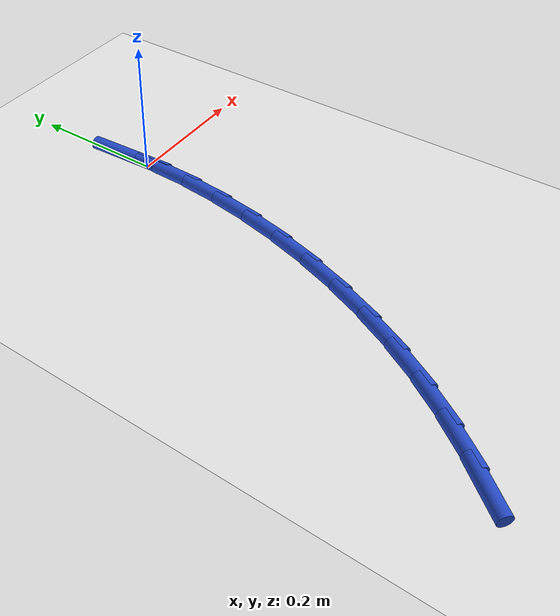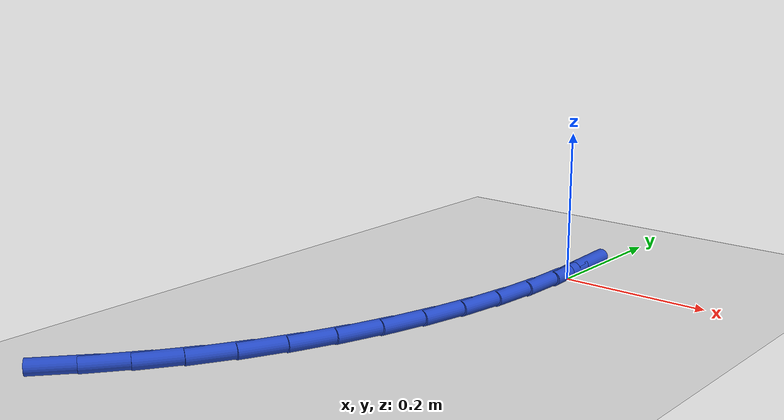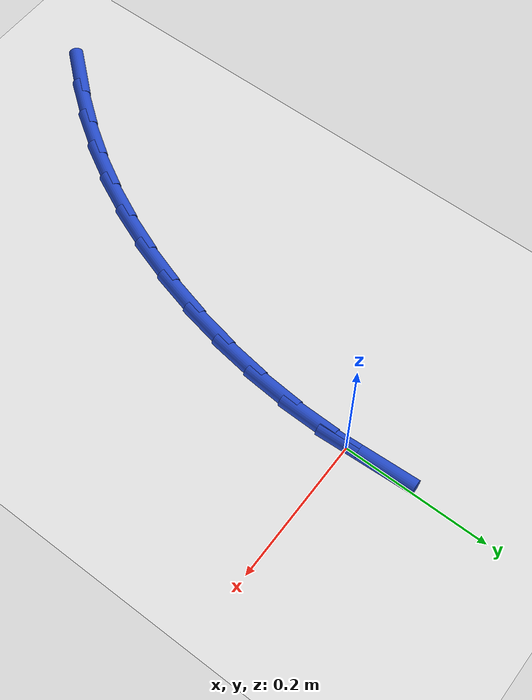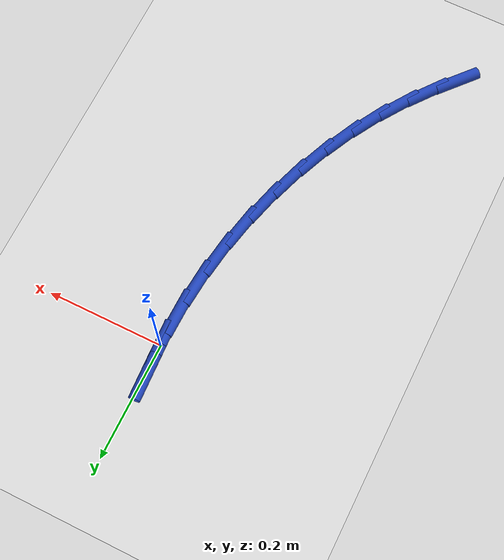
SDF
<sdf version="1.6">
 <world name="default">
  <model name="ground_plane">
   <static>1</static>
   <link name="link">
    <collision name="collision">
     <geometry><plane><normal>0 0 1</normal><size>100 100</size></plane></geometry>
     <surface><friction><ode><mu>100</mu><mu2>50</mu2></ode></friction></surface>
    </collision>
    <visual name="visual">
     <cast_shadows>0</cast_shadows>
     <geometry><plane><normal>0 0 1</normal><size>100 100</size></plane></geometry>
     <material>
      <script><uri>file://media/materials/scripts/gazebo.material</uri><name>Gazebo/WhiteGlow</name></script>
     </material>
    </visual>
   </link>
  </model>
  <model name="line">
   <link name="link_0">
    <pose>6.938893903907228e-17 1.249000902703301e-16 0.01 0 1.57 -1.5229784352119164</pose>
    <collision name="collision">
     <geometry><cylinder><radius>0.01</radius><length>0.08</length></cylinder></geometry>
    </collision>
    <visual name="visual">
     <material>
      <script><name>Gazebo/Blue</name><uri>file://media/materials/scripts/gazebo.material</uri></script>
     </material>
     <geometry><cylinder><radius>0.01</radius><length>0.08</length></cylinder></geometry>
    </visual>
   </link>
   <link name="link_108">
    <pose>-0.23690177930691125 -0.6356177215935005 0.01 0 1.57 0.8570932087480065</pose>
    <collision name="collision">
     <geometry><cylinder><radius>0.01</radius><length>0.08</length></cylinder></geometry>
    </collision>
    <visual name="visual">
     <material>
      <script><name>Gazebo/Blue</name><uri>file://media/materials/scripts/gazebo.material</uri></script>
     </material>
     <geometry><cylinder><radius>0.01</radius><length>0.08</length></cylinder></geometry>
    </visual>
   </link>
   <link name="link_109">
    <pose>-0.2003229775550768 -0.5933783448437792 0.01 0 1.57 0.9178049573305676</pose>
    <collision name="collision">
     <geometry><cylinder><radius>0.01</radius><length>0.08</length></cylinder></geometry>
    </collision>
    <visual name="visual">
     <material>
      <script><name>Gazebo/Blue</name><uri>file://media/materials/scripts/gazebo.material</uri></script>
     </material>
     <geometry><cylinder><radius>0.01</radius><length>0.08</length></cylinder></geometry>
    </visual>
   </link>
   <link name="link_110">
    <pose>-0.16641753666830447 -0.5490537574838205 0.01 0 1.57 0.9848470602064388</pose>
    <collision name="collision">
     <geometry><cylinder><radius>0.01</radius><length>0.08</length></cylinder></geometry>
    </collision>
    <visual name="visual">
     <material>
      <script><name>Gazebo/Blue</name><uri>file://media/materials/scripts/gazebo.material</uri></script>
     </material>
     <geometry><cylinder><radius>0.01</radius><length>0.08</length></cylinder></geometry>
    </visual>
   </link>
   <link name="link_111">
    <pose>-0.13532656835567033 -0.5022091829436885 0.01 0 1.57 1.0553380934393264</pose>
    <collision name="collision">
     <geometry><cylinder><radius>0.01</radius><length>0.08</length></cylinder></geometry>
    </collision>
    <visual name="visual">
     <material>
      <script><name>Gazebo/Blue</name><uri>file://media/materials/scripts/gazebo.material</uri></script>
     </material>
     <geometry><cylinder><radius>0.01</radius><length>0.08</length></cylinder></geometry>
    </visual>
   </link>
   <link name="link_112">
    <pose>-0.10718459660914026 -0.45253636823126026 0.01 0 1.57 1.1229822877850486</pose>
    <collision name="collision">
     <geometry><cylinder><radius>0.01</radius><length>0.08</length></cylinder></geometry>
    </collision>
    <visual name="visual">
     <material>
      <script><name>Gazebo/Blue</name><uri>file://media/materials/scripts/gazebo.material</uri></script>
     </material>
     <geometry><cylinder><radius>0.01</radius><length>0.08</length></cylinder></geometry>
    </visual>
   </link>
   <link name="link_113">
    <pose>-0.0820959154238212 -0.4003076571372383 0.01 0 1.57 1.187098791119808</pose>
    <collision name="collision">
     <geometry><cylinder><radius>0.01</radius><length>0.08</length></cylinder></geometry>
    </collision>
    <visual name="visual">
     <material>
      <script><name>Gazebo/Blue</name><uri>file://media/materials/scripts/gazebo.material</uri></script>
     </material>
     <geometry><cylinder><radius>0.01</radius><length>0.08</length></cylinder></geometry>
    </visual>
   </link>
   <link name="link_114">
    <pose>-0.06015615286801452 -0.34596183108862744 0.01 0 1.57 1.248716464378724</pose>
    <collision name="collision">
     <geometry><cylinder><radius>0.01</radius><length>0.08</length></cylinder></geometry>
    </collision>
    <visual name="visual">
     <material>
      <script><name>Gazebo/Blue</name><uri>file://media/materials/scripts/gazebo.material</uri></script>
     </material>
     <geometry><cylinder><radius>0.01</radius><length>0.08</length></cylinder></geometry>
    </visual>
   </link>
   <link name="link_115">
    <pose>-0.04146093628541758 -0.28993768542916637 0.01 0 1.57 1.3088130107888012</pose>
    <collision name="collision">
     <geometry><cylinder><radius>0.01</radius><length>0.08</length></cylinder></geometry>
    </collision>
    <visual name="visual">
     <material>
      <script><name>Gazebo/Blue</name><uri>file://media/materials/scripts/gazebo.material</uri></script>
     </material>
     <geometry><cylinder><radius>0.01</radius><length>0.08</length></cylinder></geometry>
    </visual>
   </link>
   <link name="link_116">
    <pose>-0.026105893019728474 -0.23267401550259606 0.01 0 1.57 1.368332626422635</pose>
    <collision name="collision">
     <geometry><cylinder><radius>0.01</radius><length>0.08</length></cylinder></geometry>
    </collision>
    <visual name="visual">
     <material>
      <script><name>Gazebo/Blue</name><uri>file://media/materials/scripts/gazebo.material</uri></script>
     </material>
     <geometry><cylinder><radius>0.01</radius><length>0.08</length></cylinder></geometry>
    </visual>
   </link>
   <link name="link_117">
    <pose>-0.014186650414644557 -0.1746096166526549 0.01 0 1.57 1.4282083546587228</pose>
    <collision name="collision">
     <geometry><cylinder><radius>0.01</radius><length>0.08</length></cylinder></geometry>
    </collision>
    <visual name="visual">
     <material>
      <script><name>Gazebo/Blue</name><uri>file://media/materials/scripts/gazebo.material</uri></script>
     </material>
     <geometry><cylinder><radius>0.01</radius><length>0.08</length></cylinder></geometry>
    </visual>
   </link>
   <link name="link_118">
    <pose>-0.005798835813863427 -0.11618328422308243 0.01 0 1.57 1.4893862116999974</pose>
    <collision name="collision">
     <geometry><cylinder><radius>0.01</radius><length>0.08</length></cylinder></geometry>
    </collision>
    <visual name="visual">
     <material>
      <script><name>Gazebo/Blue</name><uri>file://media/materials/scripts/gazebo.material</uri></script>
     </material>
     <geometry><cylinder><radius>0.01</radius><length>0.08</length></cylinder></geometry>
    </visual>
   </link>
   <link name="link_119">
    <pose>-0.0010380765610826358 -0.05783381355761714 0.01 0 1.57 1.552848952462027</pose>
    <collision name="collision">
     <geometry><cylinder><radius>0.01</radius><length>0.08</length></cylinder></geometry>
    </collision>
    <visual name="visual">
     <material>
      <script><name>Gazebo/Blue</name><uri>file://media/materials/scripts/gazebo.material</uri></script>
     </material>
     <geometry><cylinder><radius>0.01</radius><length>0.08</length></cylinder></geometry>
    </visual>
   </link>
   <link name="link_120">
    <pose>4.85722573273506e-17 -1.3877787807814457e-17 0.01 0 1.57 -1.5219557208543342</pose>
    <collision name="collision">
     <geometry><cylinder><radius>0.01</radius><length>0.08</length></cylinder></geometry>
    </collision>
    <visual name="visual">
     <material>
      <script><name>Gazebo/Blue</name><uri>file://media/materials/scripts/gazebo.material</uri></script>
     </material>
     <geometry><cylinder><radius>0.01</radius><length>0.08</length></cylinder></geometry>
    </visual>
   </link>
   <link name="link_121">
    <pose>-0.0027802334743128564 0.056879361106030334 0.01 0 1.57 -1.5219557208543337</pose>
    <collision name="collision">
     <geometry><cylinder><radius>0.01</radius><length>0.08</length></cylinder></geometry>
    </collision>
    <visual name="visual">
     <material>
      <script><name>Gazebo/Blue</name><uri>file://media/materials/scripts/gazebo.material</uri></script>
     </material>
     <geometry><cylinder><radius>0.01</radius><length>0.08</length></cylinder></geometry>
    </visual>
   </link>
  </model>
 </world>
</sdf>
